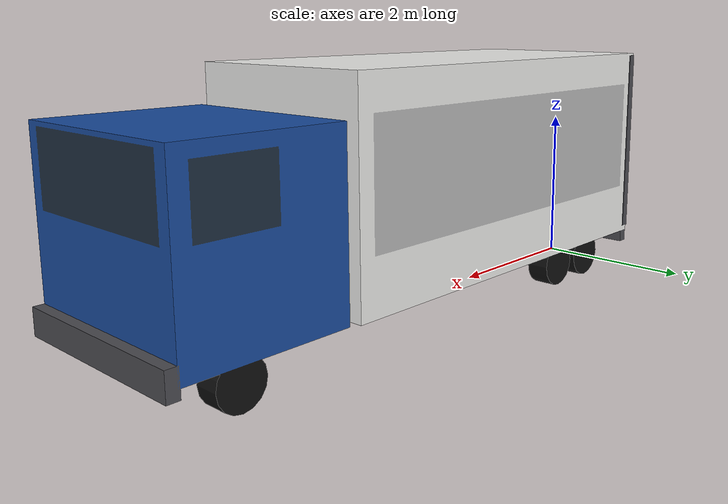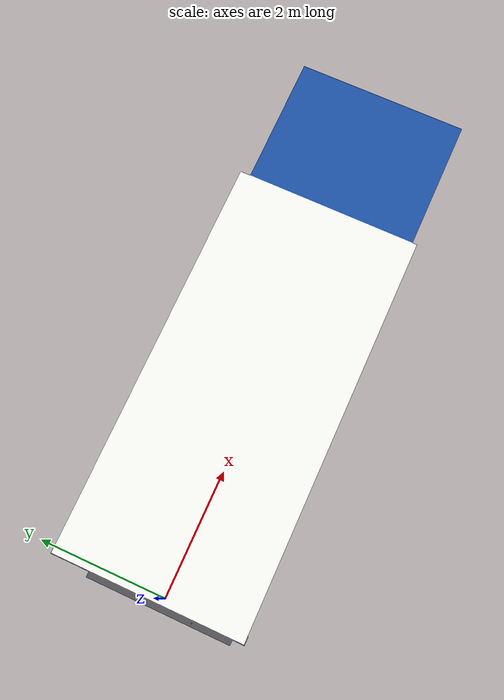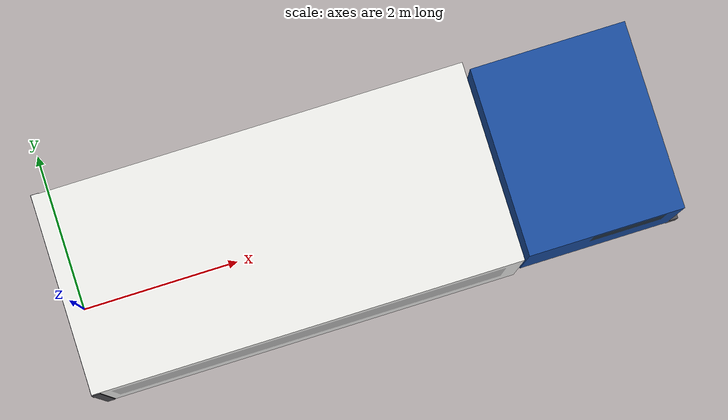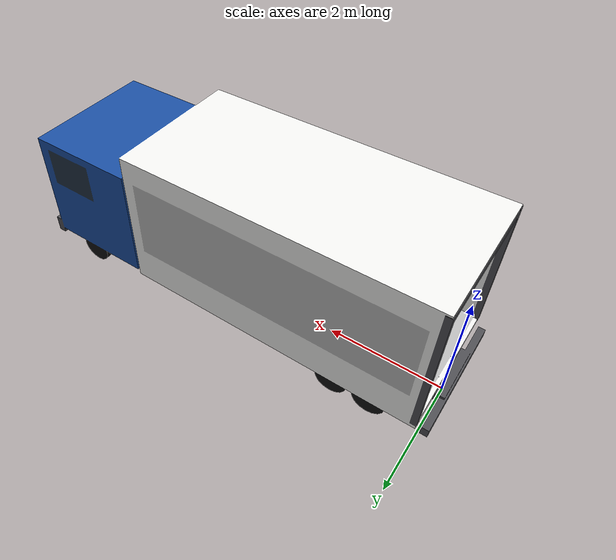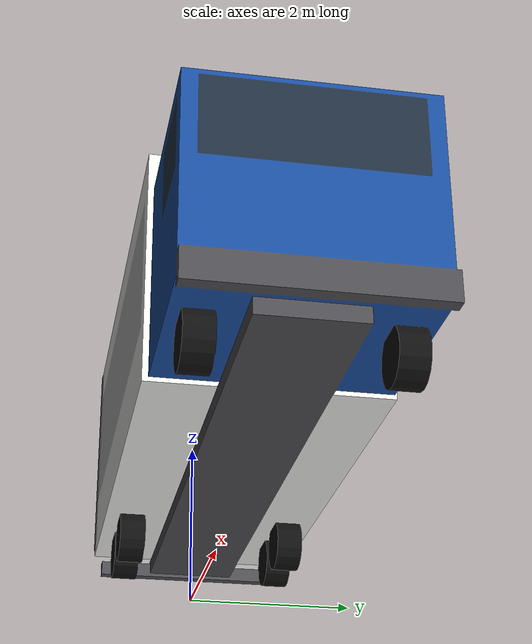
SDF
<?xml version="1.0"?>
<sdf version="1.6">
  <model name="delivery_truck">
    <static>true</static>
    <link name="link">
      <collision name="floor">
        <pose>2.6 0 0.55 0 0 0</pose>
        <geometry><box><size>5.2 2.4 0.1</size></box></geometry>
      </collision>
      <collision name="wall_left">
        <pose>2.6 1.17 1.75 0 0 0</pose>
        <geometry><box><size>5.2 0.06 2.3</size></box></geometry>
      </collision>
      <collision name="wall_right">
        <pose>2.6 -1.17 1.75 0 0 0</pose>
        <geometry><box><size>5.2 0.06 2.3</size></box></geometry>
      </collision>
      <collision name="wall_front">
        <pose>5.17 0 1.75 0 0 0</pose>
        <geometry><box><size>0.06 2.4 2.3</size></box></geometry>
      </collision>
      <collision name="roof">
        <pose>2.6 0 2.93 0 0 0</pose>
        <geometry><box><size>5.2 2.4 0.06</size></box></geometry>
      </collision>
      <collision name="chassis">
        <pose>3.4 0 0.42 0 0 0</pose>
        <geometry><box><size>7.1 1 0.16</size></box></geometry>
      </collision>
      <collision name="bumper">
        <pose>-0.12 0 0.38 0 0 0</pose>
        <geometry><box><size>0.12 2.2 0.16</size></box></geometry>
      </collision>
      <collision name="cab">
        <pose>6.25 0 1.5 0 0 0</pose>
        <geometry><box><size>1.9 2.3 2</size></box></geometry>
      </collision>
      <collision name="cab_bumper">
        <pose>7.25 0 0.55 0 0 0</pose>
        <geometry><box><size>0.14 2.3 0.3</size></box></geometry>
      </collision>
      <collision name="wheel_0.80_-1">
        <pose>0.8 -0.9 0.28 0 0 0</pose>
        <geometry><box><size>0.56 0.28 0.56</size></box></geometry>
      </collision>
      <collision name="wheel_0.80_1">
        <pose>0.8 0.9 0.28 0 0 0</pose>
        <geometry><box><size>0.56 0.28 0.56</size></box></geometry>
      </collision>
      <collision name="wheel_1.45_-1">
        <pose>1.45 -0.9 0.28 0 0 0</pose>
        <geometry><box><size>0.56 0.28 0.56</size></box></geometry>
      </collision>
      <collision name="wheel_1.45_1">
        <pose>1.45 0.9 0.28 0 0 0</pose>
        <geometry><box><size>0.56 0.28 0.56</size></box></geometry>
      </collision>
      <collision name="wheel_6.50_-1">
        <pose>6.5 -0.9 0.28 0 0 0</pose>
        <geometry><box><size>0.56 0.28 0.56</size></box></geometry>
      </collision>
      <collision name="wheel_6.50_1">
        <pose>6.5 0.9 0.28 0 0 0</pose>
        <geometry><box><size>0.56 0.28 0.56</size></box></geometry>
      </collision>
      <visual name="visual">
        <cast_shadows>false</cast_shadows>
        <geometry><mesh><uri>model://delivery_truck/meshes/mesh.dae</uri></mesh></geometry>
      </visual>
    </link>
  </model>
</sdf>
